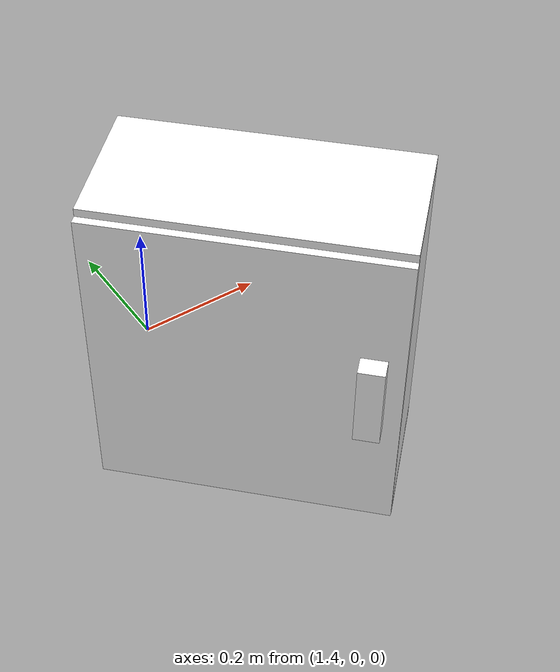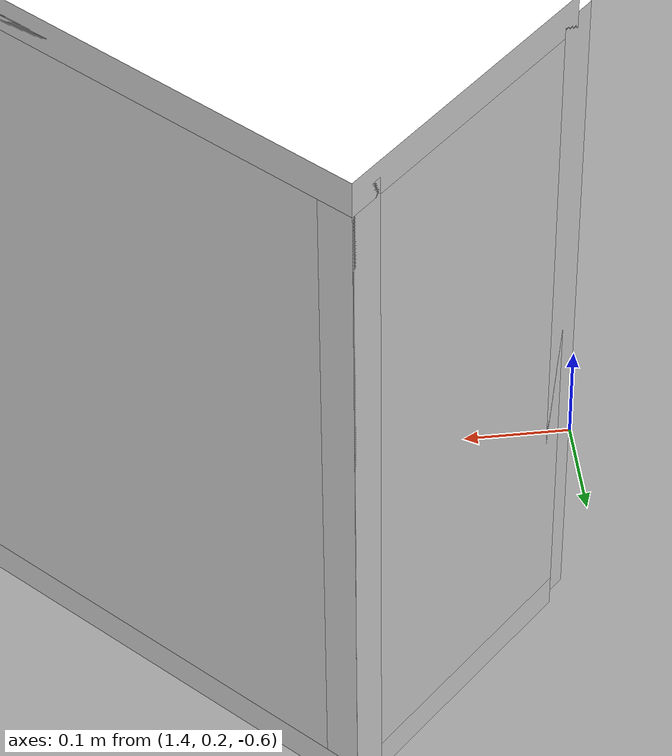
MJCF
<mujoco model="cabinet">
    <compiler angle="radian" eulerseq='zxy' />
    <option gravity = "0 0 0" />
    <option>
        <flag contact = "disable"/>
    </option>
    <statistic	extent="1.0" center="0.0 0.0 0.0"/>
    <visual>
        <map fogstart="3" fogend="5" force="0.1" znear=" 0.100000 " zfar=" 12.000000 "/>
    </visual>
    <size njmax="500" nconmax="100" />
    <actuator>
        <velocity joint="bottom_left_hinge" name="viva_revolution" kv='10'></velocity>
    </actuator>
    <asset>
        <texture builtin="flat" name="tabletex" height="32" width="32" rgb1="1 1 1" type="cube"></texture>
        <texture builtin="flat" name="objtex" height="32" width="32" rgb1="1 1 1" type="cube"></texture>
        <texture builtin="flat" name="handletex" height="32" width="32" rgb1="1 1 1" type="cube"></texture>
        <texture builtin="flat" name="wallpaper" height="32" width="32" rgb1="1 1 1" type="cube"></texture>
        <material name="geomTable" shininess="0.03" specular="0.75" texture="tabletex"></material>
        <material name="geomObj" shininess="0.03" specular="0.75" texture="objtex"></material>
        <material name="geomHandle" shininess="0.03" specular="0.75" texture="handletex"></material>
        <material name="bg" shininess="0.03" specular="0.75" texture="wallpaper"></material>
    </asset>
    <worldbody>
            <body name="cabinet_bottom" pos= " 1.753858 0.201804 -0.686336 "  quat= " -0.379653 0.000000 0.000000 0.925129" >
                <inertial pos="0 0 0" mass="1" diaginertia="1 1 1" />
                <geom size= " 0.143228 0.308758 0.017059 "  type="box" material="geomObj" name="b"/>
                <body name="cabinet_left" pos= " 0.000000 -0.291699 0.343433 " >
                    <inertial pos="0 0 0" mass="1" diaginertia="1 1 1" />
                    <geom size= " 0.143228 0.017059 0.343433 "  type="box" material="geomObj" name="c" />
                </body>
                <body name="cabinet_right" pos= " 0.000000 0.291699 0.343433 " >
                    <inertial pos="0 0 0" mass="1" diaginertia="1 1 1" />
                    <geom size= " 0.143228 0.017059 0.343433 "  type="box" material="geomObj" name="d" />
                </body>
                <body name="cabinet_top" pos= " 0.000000 0.000000 0.686866 " >
                    <inertial pos="0 0 0" mass="1" diaginertia="1 1 1" />
                    <geom size= " 0.143228 0.308758 0.017059 "  type="box" material="geomObj" name="e"/>
                </body>
                <body name="cabinet_back" pos= " -0.126169 0.000000 0.343433 "  >
                    <inertial pos="0 0 0" mass="1" diaginertia="1 1 1" />
                    <geom size= " 0.017059 0.308758 0.343433 "  type="box" material="geomObj" name="f" />
                </body>
                <body name="cabinet_left_hinge" pos= " 0.143228 -0.308758 0.343433 " >
                    <inertial pos= " 0.000000 0.308758 0.000000 "  mass="1" diaginertia="1 1 1" />
                    <joint name="bottom_left_hinge" type="hinge" pos="0 0 0" axis="0 0 1" limited="true" range= "-2.3 0"  />
                    <geom size= " 0.017059 0.308758 0.343433 "  pos= " 0.000000 0.308758 0.000000 "  type="box" material="geomObj" name="g"/>
                    <body name="handle_link" pos= " 0.035807 0.556619 0.016460 " >
                        <inertial pos="0 0 0" mass="1" diaginertia="1 1 1" />
                        <geom size= " 0.020479 0.026345 0.092335 "  type="box" material="geomHandle" name="h"/>
                    </body>
                </body>
            </body>
        <body name="external_camera_body_0" pos="0.0 0 0.00">
            <camera euler="-1.57 1.57 0.0" fovy=" 54.280851 " name="external_camera_0" pos="0.0 0 0"></camera>
            <inertial pos= " 0.00 0.0 0.000000 " mass="1" diaginertia="1 1 1" />
            <joint name="cam_j" pos="0.0 0 0" axis = "1 0 0" type="free" />
        </body>
    </worldbody>
</mujoco>
